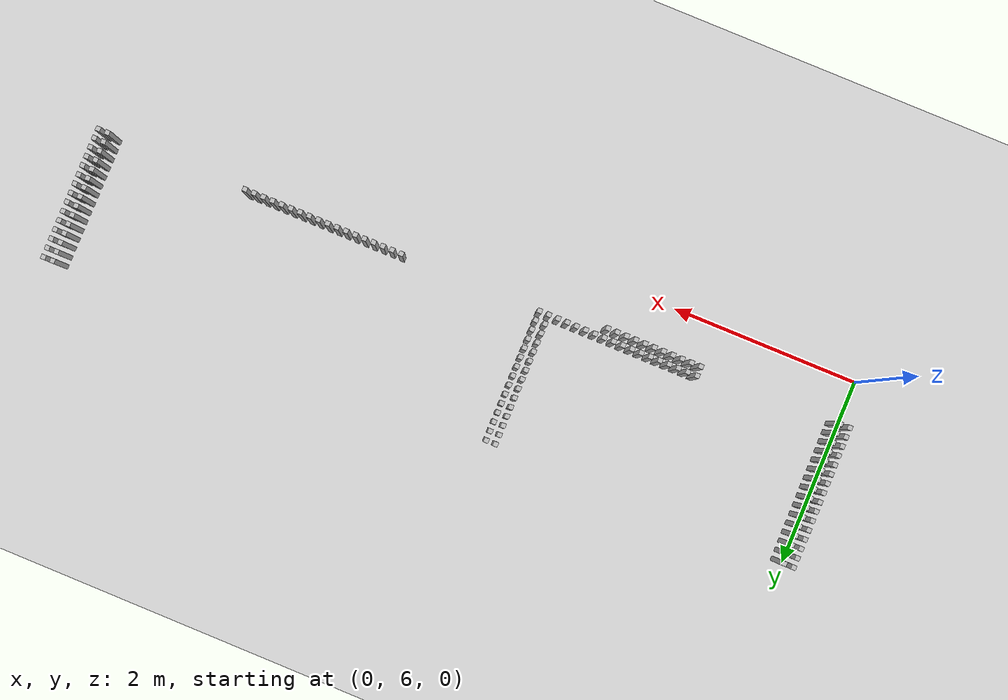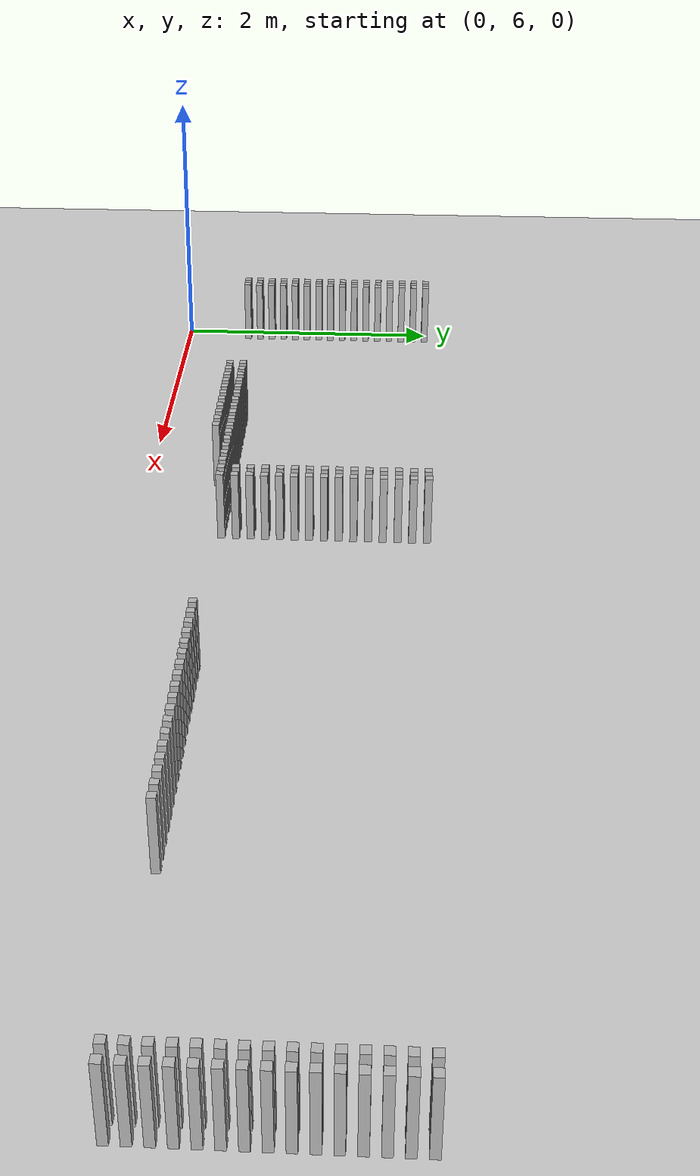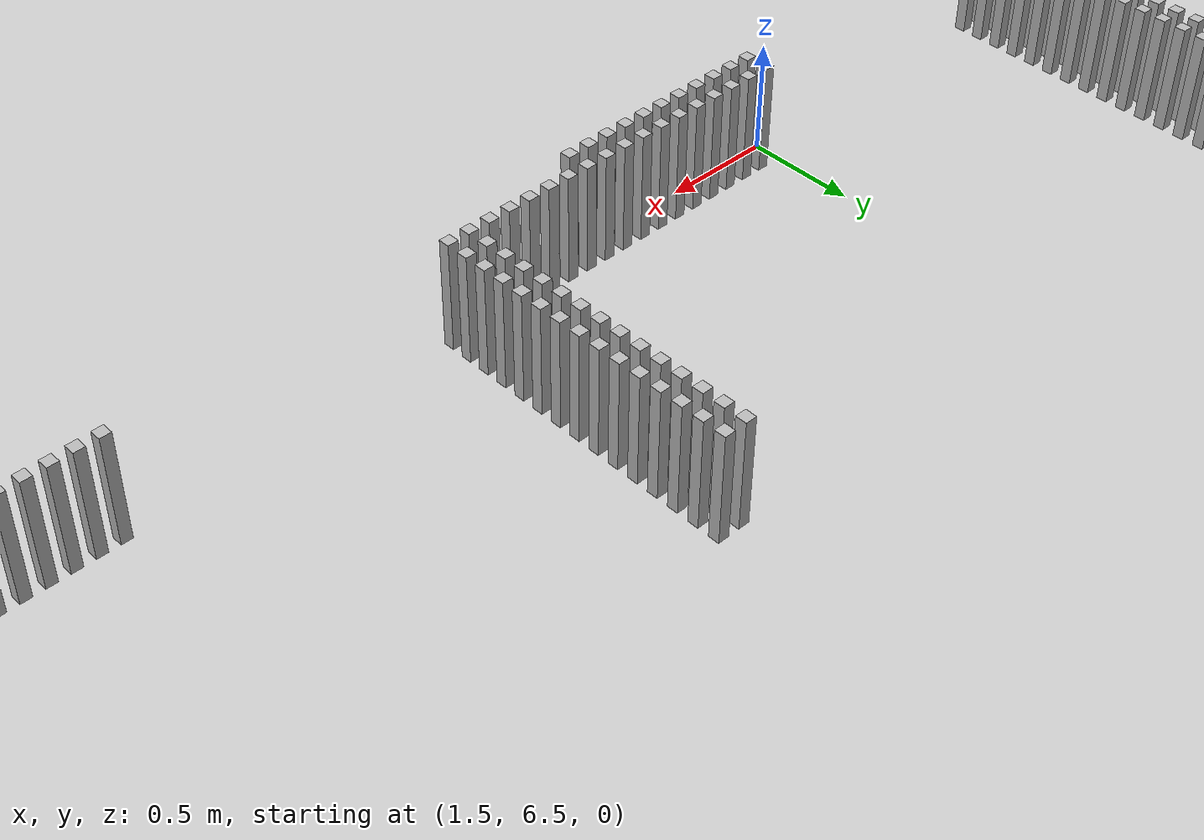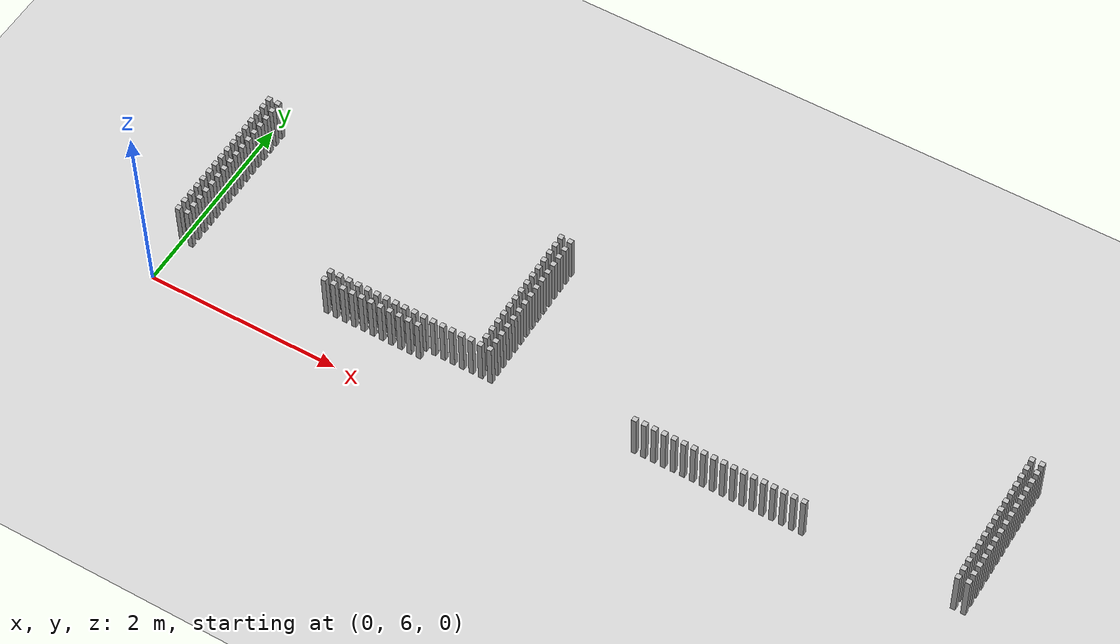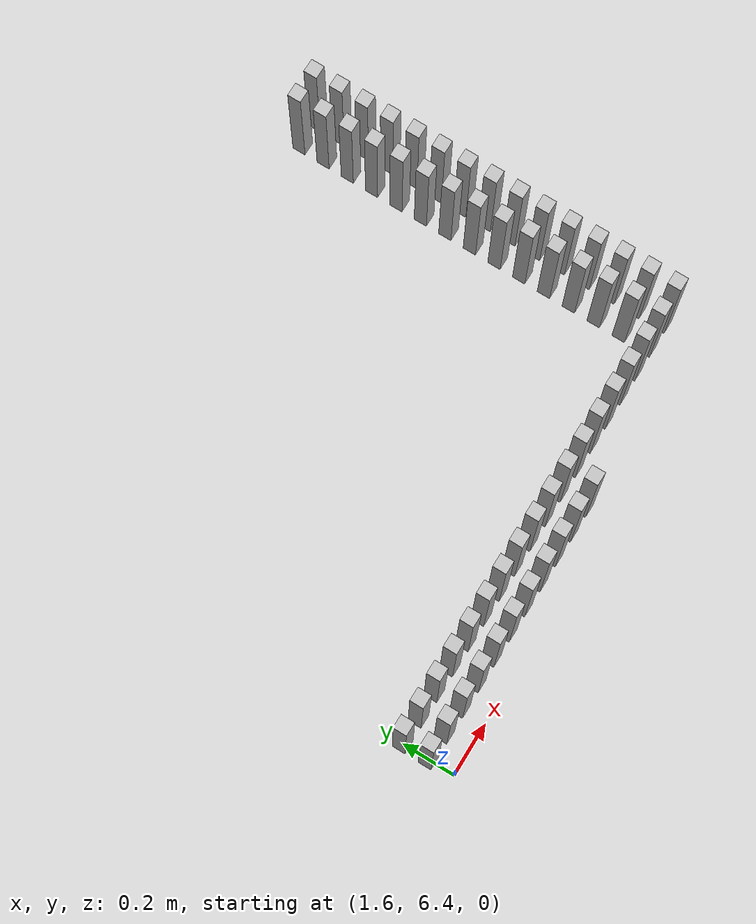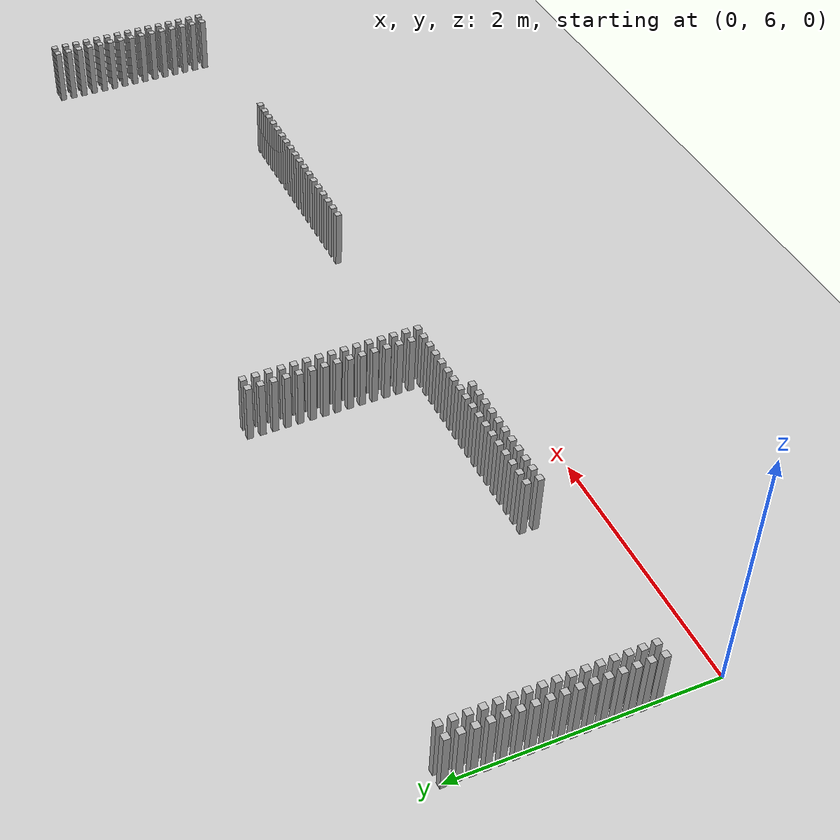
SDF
<sdf version="1.6">
 <world name="default_world">
  <include><uri>model://sun</uri></include>
  <include><uri>model://ground_plane</uri></include>
  <model name="wall_136">
   <static>true</static>
   <link name="link">
    <collision name="collision"><geometry><box><size>0.05 0.05 0.5</size></box></geometry></collision>
    <visual name="visual"><geometry><box><size>0.05 0.05 0.5</size></box></geometry></visual>
    <pose>0.0 8.0 0.25 0 0 0</pose>
   </link>
  </model>
  <model name="wall_137">
   <static>true</static>
   <link name="link">
    <collision name="collision"><geometry><box><size>0.05 0.05 0.5</size></box></geometry></collision>
    <visual name="visual"><geometry><box><size>0.05 0.05 0.5</size></box></geometry></visual>
    <pose>0.1 8.0 0.25 0 0 0</pose>
   </link>
  </model>
  <model name="wall_138">
   <static>true</static>
   <link name="link">
    <collision name="collision"><geometry><box><size>0.05 0.05 0.5</size></box></geometry></collision>
    <visual name="visual"><geometry><box><size>0.05 0.05 0.5</size></box></geometry></visual>
    <pose>3.2 8.0 0.25 0 0 0</pose>
   </link>
  </model>
  <model name="wall_139">
   <static>true</static>
   <link name="link">
    <collision name="collision"><geometry><box><size>0.05 0.05 0.5</size></box></geometry></collision>
    <visual name="visual"><geometry><box><size>0.05 0.05 0.5</size></box></geometry></visual>
    <pose>3.3000000000000003 8.0 0.25 0 0 0</pose>
   </link>
  </model>
  <model name="wall_140">
   <static>true</static>
   <link name="link">
    <collision name="collision"><geometry><box><size>0.05 0.05 0.5</size></box></geometry></collision>
    <visual name="visual"><geometry><box><size>0.05 0.05 0.5</size></box></geometry></visual>
    <pose>8.0 8.0 0.25 0 0 0</pose>
   </link>
  </model>
  <model name="wall_141">
   <static>true</static>
   <link name="link">
    <collision name="collision"><geometry><box><size>0.05 0.05 0.5</size></box></geometry></collision>
    <visual name="visual"><geometry><box><size>0.05 0.05 0.5</size></box></geometry></visual>
    <pose>8.1 8.0 0.25 0 0 0</pose>
   </link>
  </model>
  <model name="wall_142">
   <static>true</static>
   <link name="link">
    <collision name="collision"><geometry><box><size>0.05 0.05 0.5</size></box></geometry></collision>
    <visual name="visual"><geometry><box><size>0.05 0.05 0.5</size></box></geometry></visual>
    <pose>0.0 7.9 0.25 0 0 0</pose>
   </link>
  </model>
  <model name="wall_143">
   <static>true</static>
   <link name="link">
    <collision name="collision"><geometry><box><size>0.05 0.05 0.5</size></box></geometry></collision>
    <visual name="visual"><geometry><box><size>0.05 0.05 0.5</size></box></geometry></visual>
    <pose>0.1 7.9 0.25 0 0 0</pose>
   </link>
  </model>
  <model name="wall_144">
   <static>true</static>
   <link name="link">
    <collision name="collision"><geometry><box><size>0.05 0.05 0.5</size></box></geometry></collision>
    <visual name="visual"><geometry><box><size>0.05 0.05 0.5</size></box></geometry></visual>
    <pose>3.2 7.9 0.25 0 0 0</pose>
   </link>
  </model>
  <model name="wall_145">
   <static>true</static>
   <link name="link">
    <collision name="collision"><geometry><box><size>0.05 0.05 0.5</size></box></geometry></collision>
    <visual name="visual"><geometry><box><size>0.05 0.05 0.5</size></box></geometry></visual>
    <pose>3.3000000000000003 7.9 0.25 0 0 0</pose>
   </link>
  </model>
  <model name="wall_146">
   <static>true</static>
   <link name="link">
    <collision name="collision"><geometry><box><size>0.05 0.05 0.5</size></box></geometry></collision>
    <visual name="visual"><geometry><box><size>0.05 0.05 0.5</size></box></geometry></visual>
    <pose>8.0 7.9 0.25 0 0 0</pose>
   </link>
  </model>
  <model name="wall_147">
   <static>true</static>
   <link name="link">
    <collision name="collision"><geometry><box><size>0.05 0.05 0.5</size></box></geometry></collision>
    <visual name="visual"><geometry><box><size>0.05 0.05 0.5</size></box></geometry></visual>
    <pose>8.1 7.9 0.25 0 0 0</pose>
   </link>
  </model>
  <model name="wall_148">
   <static>true</static>
   <link name="link">
    <collision name="collision"><geometry><box><size>0.05 0.05 0.5</size></box></geometry></collision>
    <visual name="visual"><geometry><box><size>0.05 0.05 0.5</size></box></geometry></visual>
    <pose>0.0 7.800000000000001 0.25 0 0 0</pose>
   </link>
  </model>
  <model name="wall_149">
   <static>true</static>
   <link name="link">
    <collision name="collision"><geometry><box><size>0.05 0.05 0.5</size></box></geometry></collision>
    <visual name="visual"><geometry><box><size>0.05 0.05 0.5</size></box></geometry></visual>
    <pose>0.1 7.800000000000001 0.25 0 0 0</pose>
   </link>
  </model>
  <model name="wall_150">
   <static>true</static>
   <link name="link">
    <collision name="collision"><geometry><box><size>0.05 0.05 0.5</size></box></geometry></collision>
    <visual name="visual"><geometry><box><size>0.05 0.05 0.5</size></box></geometry></visual>
    <pose>3.2 7.800000000000001 0.25 0 0 0</pose>
   </link>
  </model>
  <model name="wall_151">
   <static>true</static>
   <link name="link">
    <collision name="collision"><geometry><box><size>0.05 0.05 0.5</size></box></geometry></collision>
    <visual name="visual"><geometry><box><size>0.05 0.05 0.5</size></box></geometry></visual>
    <pose>3.3000000000000003 7.800000000000001 0.25 0 0 0</pose>
   </link>
  </model>
  <model name="wall_152">
   <static>true</static>
   <link name="link">
    <collision name="collision"><geometry><box><size>0.05 0.05 0.5</size></box></geometry></collision>
    <visual name="visual"><geometry><box><size>0.05 0.05 0.5</size></box></geometry></visual>
    <pose>8.0 7.800000000000001 0.25 0 0 0</pose>
   </link>
  </model>
  <model name="wall_153">
   <static>true</static>
   <link name="link">
    <collision name="collision"><geometry><box><size>0.05 0.05 0.5</size></box></geometry></collision>
    <visual name="visual"><geometry><box><size>0.05 0.05 0.5</size></box></geometry></visual>
    <pose>8.1 7.800000000000001 0.25 0 0 0</pose>
   </link>
  </model>
  <model name="wall_154">
   <static>true</static>
   <link name="link">
    <collision name="collision"><geometry><box><size>0.05 0.05 0.5</size></box></geometry></collision>
    <visual name="visual"><geometry><box><size>0.05 0.05 0.5</size></box></geometry></visual>
    <pose>0.0 7.7 0.25 0 0 0</pose>
   </link>
  </model>
  <model name="wall_155">
   <static>true</static>
   <link name="link">
    <collision name="collision"><geometry><box><size>0.05 0.05 0.5</size></box></geometry></collision>
    <visual name="visual"><geometry><box><size>0.05 0.05 0.5</size></box></geometry></visual>
    <pose>0.1 7.7 0.25 0 0 0</pose>
   </link>
  </model>
  <model name="wall_156">
   <static>true</static>
   <link name="link">
    <collision name="collision"><geometry><box><size>0.05 0.05 0.5</size></box></geometry></collision>
    <visual name="visual"><geometry><box><size>0.05 0.05 0.5</size></box></geometry></visual>
    <pose>3.2 7.7 0.25 0 0 0</pose>
   </link>
  </model>
  <model name="wall_157">
   <static>true</static>
   <link name="link">
    <collision name="collision"><geometry><box><size>0.05 0.05 0.5</size></box></geometry></collision>
    <visual name="visual"><geometry><box><size>0.05 0.05 0.5</size></box></geometry></visual>
    <pose>3.3000000000000003 7.7 0.25 0 0 0</pose>
   </link>
  </model>
  <model name="wall_158">
   <static>true</static>
   <link name="link">
    <collision name="collision"><geometry><box><size>0.05 0.05 0.5</size></box></geometry></collision>
    <visual name="visual"><geometry><box><size>0.05 0.05 0.5</size></box></geometry></visual>
    <pose>8.0 7.7 0.25 0 0 0</pose>
   </link>
  </model>
  <model name="wall_159">
   <static>true</static>
   <link name="link">
    <collision name="collision"><geometry><box><size>0.05 0.05 0.5</size></box></geometry></collision>
    <visual name="visual"><geometry><box><size>0.05 0.05 0.5</size></box></geometry></visual>
    <pose>8.1 7.7 0.25 0 0 0</pose>
   </link>
  </model>
  <model name="wall_160">
   <static>true</static>
   <link name="link">
    <collision name="collision"><geometry><box><size>0.05 0.05 0.5</size></box></geometry></collision>
    <visual name="visual"><geometry><box><size>0.05 0.05 0.5</size></box></geometry></visual>
    <pose>0.0 7.6000000000000005 0.25 0 0 0</pose>
   </link>
  </model>
  <model name="wall_161">
   <static>true</static>
   <link name="link">
    <collision name="collision"><geometry><box><size>0.05 0.05 0.5</size></box></geometry></collision>
    <visual name="visual"><geometry><box><size>0.05 0.05 0.5</size></box></geometry></visual>
    <pose>0.1 7.6000000000000005 0.25 0 0 0</pose>
   </link>
  </model>
  <model name="wall_162">
   <static>true</static>
   <link name="link">
    <collision name="collision"><geometry><box><size>0.05 0.05 0.5</size></box></geometry></collision>
    <visual name="visual"><geometry><box><size>0.05 0.05 0.5</size></box></geometry></visual>
    <pose>3.2 7.6000000000000005 0.25 0 0 0</pose>
   </link>
  </model>
  <model name="wall_163">
   <static>true</static>
   <link name="link">
    <collision name="collision"><geometry><box><size>0.05 0.05 0.5</size></box></geometry></collision>
    <visual name="visual"><geometry><box><size>0.05 0.05 0.5</size></box></geometry></visual>
    <pose>3.3000000000000003 7.6000000000000005 0.25 0 0 0</pose>
   </link>
  </model>
  <model name="wall_164">
   <static>true</static>
   <link name="link">
    <collision name="collision"><geometry><box><size>0.05 0.05 0.5</size></box></geometry></collision>
    <visual name="visual"><geometry><box><size>0.05 0.05 0.5</size></box></geometry></visual>
    <pose>8.0 7.6000000000000005 0.25 0 0 0</pose>
   </link>
  </model>
  <model name="wall_165">
   <static>true</static>
   <link name="link">
    <collision name="collision"><geometry><box><size>0.05 0.05 0.5</size></box></geometry></collision>
    <visual name="visual"><geometry><box><size>0.05 0.05 0.5</size></box></geometry></visual>
    <pose>8.1 7.6000000000000005 0.25 0 0 0</pose>
   </link>
  </model>
  <model name="wall_166">
   <static>true</static>
   <link name="link">
    <collision name="collision"><geometry><box><size>0.05 0.05 0.5</size></box></geometry></collision>
    <visual name="visual"><geometry><box><size>0.05 0.05 0.5</size></box></geometry></visual>
    <pose>0.0 7.5 0.25 0 0 0</pose>
   </link>
  </model>
  <model name="wall_167">
   <static>true</static>
   <link name="link">
    <collision name="collision"><geometry><box><size>0.05 0.05 0.5</size></box></geometry></collision>
    <visual name="visual"><geometry><box><size>0.05 0.05 0.5</size></box></geometry></visual>
    <pose>0.1 7.5 0.25 0 0 0</pose>
   </link>
  </model>
  <model name="wall_168">
   <static>true</static>
   <link name="link">
    <collision name="collision"><geometry><box><size>0.05 0.05 0.5</size></box></geometry></collision>
    <visual name="visual"><geometry><box><size>0.05 0.05 0.5</size></box></geometry></visual>
    <pose>3.2 7.5 0.25 0 0 0</pose>
   </link>
  </model>
  <model name="wall_169">
   <static>true</static>
   <link name="link">
    <collision name="collision"><geometry><box><size>0.05 0.05 0.5</size></box></geometry></collision>
    <visual name="visual"><geometry><box><size>0.05 0.05 0.5</size></box></geometry></visual>
    <pose>3.3000000000000003 7.5 0.25 0 0 0</pose>
   </link>
  </model>
  <model name="wall_170">
   <static>true</static>
   <link name="link">
    <collision name="collision"><geometry><box><size>0.05 0.05 0.5</size></box></geometry></collision>
    <visual name="visual"><geometry><box><size>0.05 0.05 0.5</size></box></geometry></visual>
    <pose>8.0 7.5 0.25 0 0 0</pose>
   </link>
  </model>
  <model name="wall_171">
   <static>true</static>
   <link name="link">
    <collision name="collision"><geometry><box><size>0.05 0.05 0.5</size></box></geometry></collision>
    <visual name="visual"><geometry><box><size>0.05 0.05 0.5</size></box></geometry></visual>
    <pose>8.1 7.5 0.25 0 0 0</pose>
   </link>
  </model>
  <model name="wall_172">
   <static>true</static>
   <link name="link">
    <collision name="collision"><geometry><box><size>0.05 0.05 0.5</size></box></geometry></collision>
    <visual name="visual"><geometry><box><size>0.05 0.05 0.5</size></box></geometry></visual>
    <pose>0.0 7.4 0.25 0 0 0</pose>
   </link>
  </model>
  <model name="wall_173">
   <static>true</static>
   <link name="link">
    <collision name="collision"><geometry><box><size>0.05 0.05 0.5</size></box></geometry></collision>
    <visual name="visual"><geometry><box><size>0.05 0.05 0.5</size></box></geometry></visual>
    <pose>0.1 7.4 0.25 0 0 0</pose>
   </link>
  </model>
  <model name="wall_174">
   <static>true</static>
   <link name="link">
    <collision name="collision"><geometry><box><size>0.05 0.05 0.5</size></box></geometry></collision>
    <visual name="visual"><geometry><box><size>0.05 0.05 0.5</size></box></geometry></visual>
    <pose>3.2 7.4 0.25 0 0 0</pose>
   </link>
  </model>
  <model name="wall_175">
   <static>true</static>
   <link name="link">
    <collision name="collision"><geometry><box><size>0.05 0.05 0.5</size></box></geometry></collision>
    <visual name="visual"><geometry><box><size>0.05 0.05 0.5</size></box></geometry></visual>
    <pose>3.3000000000000003 7.4 0.25 0 0 0</pose>
   </link>
  </model>
  <model name="wall_176">
   <static>true</static>
   <link name="link">
    <collision name="collision"><geometry><box><size>0.05 0.05 0.5</size></box></geometry></collision>
    <visual name="visual"><geometry><box><size>0.05 0.05 0.5</size></box></geometry></visual>
    <pose>8.0 7.4 0.25 0 0 0</pose>
   </link>
  </model>
  <model name="wall_177">
   <static>true</static>
   <link name="link">
    <collision name="collision"><geometry><box><size>0.05 0.05 0.5</size></box></geometry></collision>
    <visual name="visual"><geometry><box><size>0.05 0.05 0.5</size></box></geometry></visual>
    <pose>8.1 7.4 0.25 0 0 0</pose>
   </link>
  </model>
  <model name="wall_178">
   <static>true</static>
   <link name="link">
    <collision name="collision"><geometry><box><size>0.05 0.05 0.5</size></box></geometry></collision>
    <visual name="visual"><geometry><box><size>0.05 0.05 0.5</size></box></geometry></visual>
    <pose>0.0 7.300000000000001 0.25 0 0 0</pose>
   </link>
  </model>
  <model name="wall_179">
   <static>true</static>
   <link name="link">
    <collision name="collision"><geometry><box><size>0.05 0.05 0.5</size></box></geometry></collision>
    <visual name="visual"><geometry><box><size>0.05 0.05 0.5</size></box></geometry></visual>
    <pose>0.1 7.300000000000001 0.25 0 0 0</pose>
   </link>
  </model>
  <model name="wall_180">
   <static>true</static>
   <link name="link">
    <collision name="collision"><geometry><box><size>0.05 0.05 0.5</size></box></geometry></collision>
    <visual name="visual"><geometry><box><size>0.05 0.05 0.5</size></box></geometry></visual>
    <pose>3.2 7.300000000000001 0.25 0 0 0</pose>
   </link>
  </model>
  <model name="wall_181">
   <static>true</static>
   <link name="link">
    <collision name="collision"><geometry><box><size>0.05 0.05 0.5</size></box></geometry></collision>
    <visual name="visual"><geometry><box><size>0.05 0.05 0.5</size></box></geometry></visual>
    <pose>3.3000000000000003 7.300000000000001 0.25 0 0 0</pose>
   </link>
  </model>
  <model name="wall_182">
   <static>true</static>
   <link name="link">
    <collision name="collision"><geometry><box><size>0.05 0.05 0.5</size></box></geometry></collision>
    <visual name="visual"><geometry><box><size>0.05 0.05 0.5</size></box></geometry></visual>
    <pose>8.0 7.300000000000001 0.25 0 0 0</pose>
   </link>
  </model>
  <model name="wall_183">
   <static>true</static>
   <link name="link">
    <collision name="collision"><geometry><box><size>0.05 0.05 0.5</size></box></geometry></collision>
    <visual name="visual"><geometry><box><size>0.05 0.05 0.5</size></box></geometry></visual>
    <pose>8.1 7.300000000000001 0.25 0 0 0</pose>
   </link>
  </model>
  <model name="wall_184">
   <static>true</static>
   <link name="link">
    <collision name="collision"><geometry><box><size>0.05 0.05 0.5</size></box></geometry></collision>
    <visual name="visual"><geometry><box><size>0.05 0.05 0.5</size></box></geometry></visual>
    <pose>0.0 7.2 0.25 0 0 0</pose>
   </link>
  </model>
  <model name="wall_185">
   <static>true</static>
   <link name="link">
    <collision name="collision"><geometry><box><size>0.05 0.05 0.5</size></box></geometry></collision>
    <visual name="visual"><geometry><box><size>0.05 0.05 0.5</size></box></geometry></visual>
    <pose>0.1 7.2 0.25 0 0 0</pose>
   </link>
  </model>
  <model name="wall_186">
   <static>true</static>
   <link name="link">
    <collision name="collision"><geometry><box><size>0.05 0.05 0.5</size></box></geometry></collision>
    <visual name="visual"><geometry><box><size>0.05 0.05 0.5</size></box></geometry></visual>
    <pose>3.2 7.2 0.25 0 0 0</pose>
   </link>
  </model>
  <model name="wall_187">
   <static>true</static>
   <link name="link">
    <collision name="collision"><geometry><box><size>0.05 0.05 0.5</size></box></geometry></collision>
    <visual name="visual"><geometry><box><size>0.05 0.05 0.5</size></box></geometry></visual>
    <pose>3.3000000000000003 7.2 0.25 0 0 0</pose>
   </link>
  </model>
  <model name="wall_188">
   <static>true</static>
   <link name="link">
    <collision name="collision"><geometry><box><size>0.05 0.05 0.5</size></box></geometry></collision>
    <visual name="visual"><geometry><box><size>0.05 0.05 0.5</size></box></geometry></visual>
    <pose>8.0 7.2 0.25 0 0 0</pose>
   </link>
  </model>
  <model name="wall_189">
   <static>true</static>
   <link name="link">
    <collision name="collision"><geometry><box><size>0.05 0.05 0.5</size></box></geometry></collision>
    <visual name="visual"><geometry><box><size>0.05 0.05 0.5</size></box></geometry></visual>
    <pose>8.1 7.2 0.25 0 0 0</pose>
   </link>
  </model>
  <model name="wall_190">
   <static>true</static>
   <link name="link">
    <collision name="collision"><geometry><box><size>0.05 0.05 0.5</size></box></geometry></collision>
    <visual name="visual"><geometry><box><size>0.05 0.05 0.5</size></box></geometry></visual>
    <pose>0.0 7.1000000000000005 0.25 0 0 0</pose>
   </link>
  </model>
  <model name="wall_191">
   <static>true</static>
   <link name="link">
    <collision name="collision"><geometry><box><size>0.05 0.05 0.5</size></box></geometry></collision>
    <visual name="visual"><geometry><box><size>0.05 0.05 0.5</size></box></geometry></visual>
    <pose>0.1 7.1000000000000005 0.25 0 0 0</pose>
   </link>
  </model>
  <model name="wall_192">
   <static>true</static>
   <link name="link">
    <collision name="collision"><geometry><box><size>0.05 0.05 0.5</size></box></geometry></collision>
    <visual name="visual"><geometry><box><size>0.05 0.05 0.5</size></box></geometry></visual>
    <pose>3.2 7.1000000000000005 0.25 0 0 0</pose>
   </link>
  </model>
  <model name="wall_193">
   <static>true</static>
   <link name="link">
    <collision name="collision"><geometry><box><size>0.05 0.05 0.5</size></box></geometry></collision>
    <visual name="visual"><geometry><box><size>0.05 0.05 0.5</size></box></geometry></visual>
    <pose>3.3000000000000003 7.1000000000000005 0.25 0 0 0</pose>
   </link>
  </model>
  <model name="wall_194">
   <static>true</static>
   <link name="link">
    <collision name="collision"><geometry><box><size>0.05 0.05 0.5</size></box></geometry></collision>
    <visual name="visual"><geometry><box><size>0.05 0.05 0.5</size></box></geometry></visual>
    <pose>8.0 7.1000000000000005 0.25 0 0 0</pose>
   </link>
  </model>
  <model name="wall_195">
   <static>true</static>
   <link name="link">
    <collision name="collision"><geometry><box><size>0.05 0.05 0.5</size></box></geometry></collision>
    <visual name="visual"><geometry><box><size>0.05 0.05 0.5</size></box></geometry></visual>
    <pose>8.1 7.1000000000000005 0.25 0 0 0</pose>
   </link>
  </model>
  <model name="wall_196">
   <static>true</static>
   <link name="link">
    <collision name="collision"><geometry><box><size>0.05 0.05 0.5</size></box></geometry></collision>
    <visual name="visual"><geometry><box><size>0.05 0.05 0.5</size></box></geometry></visual>
    <pose>0.0 7.0 0.25 0 0 0</pose>
   </link>
  </model>
  <model name="wall_197">
   <static>true</static>
   <link name="link">
    <collision name="collision"><geometry><box><size>0.05 0.05 0.5</size></box></geometry></collision>
    <visual name="visual"><geometry><box><size>0.05 0.05 0.5</size></box></geometry></visual>
    <pose>0.1 7.0 0.25 0 0 0</pose>
   </link>
  </model>
  <model name="wall_198">
   <static>true</static>
   <link name="link">
    <collision name="collision"><geometry><box><size>0.05 0.05 0.5</size></box></geometry></collision>
    <visual name="visual"><geometry><box><size>0.05 0.05 0.5</size></box></geometry></visual>
    <pose>3.2 7.0 0.25 0 0 0</pose>
   </link>
  </model>
  <model name="wall_199">
   <static>true</static>
   <link name="link">
    <collision name="collision"><geometry><box><size>0.05 0.05 0.5</size></box></geometry></collision>
    <visual name="visual"><geometry><box><size>0.05 0.05 0.5</size></box></geometry></visual>
    <pose>3.3000000000000003 7.0 0.25 0 0 0</pose>
   </link>
  </model>
  <model name="wall_200">
   <static>true</static>
   <link name="link">
    <collision name="collision"><geometry><box><size>0.05 0.05 0.5</size></box></geometry></collision>
    <visual name="visual"><geometry><box><size>0.05 0.05 0.5</size></box></geometry></visual>
    <pose>8.0 7.0 0.25 0 0 0</pose>
   </link>
  </model>
  <model name="wall_201">
   <static>true</static>
   <link name="link">
    <collision name="collision"><geometry><box><size>0.05 0.05 0.5</size></box></geometry></collision>
    <visual name="visual"><geometry><box><size>0.05 0.05 0.5</size></box></geometry></visual>
    <pose>8.1 7.0 0.25 0 0 0</pose>
   </link>
  </model>
  <model name="wall_202">
   <static>true</static>
   <link name="link">
    <collision name="collision"><geometry><box><size>0.05 0.05 0.5</size></box></geometry></collision>
    <visual name="visual"><geometry><box><size>0.05 0.05 0.5</size></box></geometry></visual>
    <pose>0.0 6.9 0.25 0 0 0</pose>
   </link>
  </model>
  <model name="wall_203">
   <static>true</static>
   <link name="link">
    <collision name="collision"><geometry><box><size>0.05 0.05 0.5</size></box></geometry></collision>
    <visual name="visual"><geometry><box><size>0.05 0.05 0.5</size></box></geometry></visual>
    <pose>0.1 6.9 0.25 0 0 0</pose>
   </link>
  </model>
  <model name="wall_204">
   <static>true</static>
   <link name="link">
    <collision name="collision"><geometry><box><size>0.05 0.05 0.5</size></box></geometry></collision>
    <visual name="visual"><geometry><box><size>0.05 0.05 0.5</size></box></geometry></visual>
    <pose>3.2 6.9 0.25 0 0 0</pose>
   </link>
  </model>
  <model name="wall_205">
   <static>true</static>
   <link name="link">
    <collision name="collision"><geometry><box><size>0.05 0.05 0.5</size></box></geometry></collision>
    <visual name="visual"><geometry><box><size>0.05 0.05 0.5</size></box></geometry></visual>
    <pose>3.3000000000000003 6.9 0.25 0 0 0</pose>
   </link>
  </model>
  <model name="wall_206">
   <static>true</static>
   <link name="link">
    <collision name="collision"><geometry><box><size>0.05 0.05 0.5</size></box></geometry></collision>
    <visual name="visual"><geometry><box><size>0.05 0.05 0.5</size></box></geometry></visual>
    <pose>8.0 6.9 0.25 0 0 0</pose>
   </link>
  </model>
  <model name="wall_207">
   <static>true</static>
   <link name="link">
    <collision name="collision"><geometry><box><size>0.05 0.05 0.5</size></box></geometry></collision>
    <visual name="visual"><geometry><box><size>0.05 0.05 0.5</size></box></geometry></visual>
    <pose>8.1 6.9 0.25 0 0 0</pose>
   </link>
  </model>
  <model name="wall_208">
   <static>true</static>
   <link name="link">
    <collision name="collision"><geometry><box><size>0.05 0.05 0.5</size></box></geometry></collision>
    <visual name="visual"><geometry><box><size>0.05 0.05 0.5</size></box></geometry></visual>
    <pose>0.0 6.800000000000001 0.25 0 0 0</pose>
   </link>
  </model>
  <model name="wall_209">
   <static>true</static>
   <link name="link">
    <collision name="collision"><geometry><box><size>0.05 0.05 0.5</size></box></geometry></collision>
    <visual name="visual"><geometry><box><size>0.05 0.05 0.5</size></box></geometry></visual>
    <pose>0.1 6.800000000000001 0.25 0 0 0</pose>
   </link>
  </model>
  <model name="wall_210">
   <static>true</static>
   <link name="link">
    <collision name="collision"><geometry><box><size>0.05 0.05 0.5</size></box></geometry></collision>
    <visual name="visual"><geometry><box><size>0.05 0.05 0.5</size></box></geometry></visual>
    <pose>3.2 6.800000000000001 0.25 0 0 0</pose>
   </link>
  </model>
  <model name="wall_211">
   <static>true</static>
   <link name="link">
    <collision name="collision"><geometry><box><size>0.05 0.05 0.5</size></box></geometry></collision>
    <visual name="visual"><geometry><box><size>0.05 0.05 0.5</size></box></geometry></visual>
    <pose>3.3000000000000003 6.800000000000001 0.25 0 0 0</pose>
   </link>
  </model>
  <model name="wall_212">
   <static>true</static>
   <link name="link">
    <collision name="collision"><geometry><box><size>0.05 0.05 0.5</size></box></geometry></collision>
    <visual name="visual"><geometry><box><size>0.05 0.05 0.5</size></box></geometry></visual>
    <pose>8.0 6.800000000000001 0.25 0 0 0</pose>
   </link>
  </model>
  <model name="wall_213">
   <static>true</static>
   <link name="link">
    <collision name="collision"><geometry><box><size>0.05 0.05 0.5</size></box></geometry></collision>
    <visual name="visual"><geometry><box><size>0.05 0.05 0.5</size></box></geometry></visual>
    <pose>8.1 6.800000000000001 0.25 0 0 0</pose>
   </link>
  </model>
  <model name="wall_214">
   <static>true</static>
   <link name="link">
    <collision name="collision"><geometry><box><size>0.05 0.05 0.5</size></box></geometry></collision>
    <visual name="visual"><geometry><box><size>0.05 0.05 0.5</size></box></geometry></visual>
    <pose>0.0 6.7 0.25 0 0 0</pose>
   </link>
  </model>
  <model name="wall_215">
   <static>true</static>
   <link name="link">
    <collision name="collision"><geometry><box><size>0.05 0.05 0.5</size></box></geometry></collision>
    <visual name="visual"><geometry><box><size>0.05 0.05 0.5</size></box></geometry></visual>
    <pose>0.1 6.7 0.25 0 0 0</pose>
   </link>
  </model>
  <model name="wall_216">
   <static>true</static>
   <link name="link">
    <collision name="collision"><geometry><box><size>0.05 0.05 0.5</size></box></geometry></collision>
    <visual name="visual"><geometry><box><size>0.05 0.05 0.5</size></box></geometry></visual>
    <pose>3.2 6.7 0.25 0 0 0</pose>
   </link>
  </model>
  <model name="wall_217">
   <static>true</static>
   <link name="link">
    <collision name="collision"><geometry><box><size>0.05 0.05 0.5</size></box></geometry></collision>
    <visual name="visual"><geometry><box><size>0.05 0.05 0.5</size></box></geometry></visual>
    <pose>3.3000000000000003 6.7 0.25 0 0 0</pose>
   </link>
  </model>
  <model name="wall_218">
   <static>true</static>
   <link name="link">
    <collision name="collision"><geometry><box><size>0.05 0.05 0.5</size></box></geometry></collision>
    <visual name="visual"><geometry><box><size>0.05 0.05 0.5</size></box></geometry></visual>
    <pose>8.0 6.7 0.25 0 0 0</pose>
   </link>
  </model>
  <model name="wall_219">
   <static>true</static>
   <link name="link">
    <collision name="collision"><geometry><box><size>0.05 0.05 0.5</size></box></geometry></collision>
    <visual name="visual"><geometry><box><size>0.05 0.05 0.5</size></box></geometry></visual>
    <pose>8.1 6.7 0.25 0 0 0</pose>
   </link>
  </model>
  <model name="wall_220">
   <static>true</static>
   <link name="link">
    <collision name="collision"><geometry><box><size>0.05 0.05 0.5</size></box></geometry></collision>
    <visual name="visual"><geometry><box><size>0.05 0.05 0.5</size></box></geometry></visual>
    <pose>0.0 6.6000000000000005 0.25 0 0 0</pose>
   </link>
  </model>
  <model name="wall_221">
   <static>true</static>
   <link name="link">
    <collision name="collision"><geometry><box><size>0.05 0.05 0.5</size></box></geometry></collision>
    <visual name="visual"><geometry><box><size>0.05 0.05 0.5</size></box></geometry></visual>
    <pose>0.1 6.6000000000000005 0.25 0 0 0</pose>
   </link>
  </model>
  <model name="wall_222">
   <static>true</static>
   <link name="link">
    <collision name="collision"><geometry><box><size>0.05 0.05 0.5</size></box></geometry></collision>
    <visual name="visual"><geometry><box><size>0.05 0.05 0.5</size></box></geometry></visual>
    <pose>1.6 6.6000000000000005 0.25 0 0 0</pose>
   </link>
  </model>
  <model name="wall_223">
   <static>true</static>
   <link name="link">
    <collision name="collision"><geometry><box><size>0.05 0.05 0.5</size></box></geometry></collision>
    <visual name="visual"><geometry><box><size>0.05 0.05 0.5</size></box></geometry></visual>
    <pose>1.7000000000000002 6.6000000000000005 0.25 0 0 0</pose>
   </link>
  </model>
  <model name="wall_224">
   <static>true</static>
   <link name="link">
    <collision name="collision"><geometry><box><size>0.05 0.05 0.5</size></box></geometry></collision>
    <visual name="visual"><geometry><box><size>0.05 0.05 0.5</size></box></geometry></visual>
    <pose>1.8 6.6000000000000005 0.25 0 0 0</pose>
   </link>
  </model>
  <model name="wall_225">
   <static>true</static>
   <link name="link">
    <collision name="collision"><geometry><box><size>0.05 0.05 0.5</size></box></geometry></collision>
    <visual name="visual"><geometry><box><size>0.05 0.05 0.5</size></box></geometry></visual>
    <pose>1.9000000000000001 6.6000000000000005 0.25 0 0 0</pose>
   </link>
  </model>
  <model name="wall_226">
   <static>true</static>
   <link name="link">
    <collision name="collision"><geometry><box><size>0.05 0.05 0.5</size></box></geometry></collision>
    <visual name="visual"><geometry><box><size>0.05 0.05 0.5</size></box></geometry></visual>
    <pose>2.0 6.6000000000000005 0.25 0 0 0</pose>
   </link>
  </model>
  <model name="wall_227">
   <static>true</static>
   <link name="link">
    <collision name="collision"><geometry><box><size>0.05 0.05 0.5</size></box></geometry></collision>
    <visual name="visual"><geometry><box><size>0.05 0.05 0.5</size></box></geometry></visual>
    <pose>2.1 6.6000000000000005 0.25 0 0 0</pose>
   </link>
  </model>
  <model name="wall_228">
   <static>true</static>
   <link name="link">
    <collision name="collision"><geometry><box><size>0.05 0.05 0.5</size></box></geometry></collision>
    <visual name="visual"><geometry><box><size>0.05 0.05 0.5</size></box></geometry></visual>
    <pose>2.2 6.6000000000000005 0.25 0 0 0</pose>
   </link>
  </model>
  <model name="wall_229">
   <static>true</static>
   <link name="link">
    <collision name="collision"><geometry><box><size>0.05 0.05 0.5</size></box></geometry></collision>
    <visual name="visual"><geometry><box><size>0.05 0.05 0.5</size></box></geometry></visual>
    <pose>2.3000000000000003 6.6000000000000005 0.25 0 0 0</pose>
   </link>
  </model>
  <model name="wall_230">
   <static>true</static>
   <link name="link">
    <collision name="collision"><geometry><box><size>0.05 0.05 0.5</size></box></geometry></collision>
    <visual name="visual"><geometry><box><size>0.05 0.05 0.5</size></box></geometry></visual>
    <pose>2.4000000000000004 6.6000000000000005 0.25 0 0 0</pose>
   </link>
  </model>
  <model name="wall_231">
   <static>true</static>
   <link name="link">
    <collision name="collision"><geometry><box><size>0.05 0.05 0.5</size></box></geometry></collision>
    <visual name="visual"><geometry><box><size>0.05 0.05 0.5</size></box></geometry></visual>
    <pose>2.5 6.6000000000000005 0.25 0 0 0</pose>
   </link>
  </model>
  <model name="wall_232">
   <static>true</static>
   <link name="link">
    <collision name="collision"><geometry><box><size>0.05 0.05 0.5</size></box></geometry></collision>
    <visual name="visual"><geometry><box><size>0.05 0.05 0.5</size></box></geometry></visual>
    <pose>2.6 6.6000000000000005 0.25 0 0 0</pose>
   </link>
  </model>
  <model name="wall_233">
   <static>true</static>
   <link name="link">
    <collision name="collision"><geometry><box><size>0.05 0.05 0.5</size></box></geometry></collision>
    <visual name="visual"><geometry><box><size>0.05 0.05 0.5</size></box></geometry></visual>
    <pose>2.7 6.6000000000000005 0.25 0 0 0</pose>
   </link>
  </model>
  <model name="wall_234">
   <static>true</static>
   <link name="link">
    <collision name="collision"><geometry><box><size>0.05 0.05 0.5</size></box></geometry></collision>
    <visual name="visual"><geometry><box><size>0.05 0.05 0.5</size></box></geometry></visual>
    <pose>2.8000000000000003 6.6000000000000005 0.25 0 0 0</pose>
   </link>
  </model>
  <model name="wall_235">
   <static>true</static>
   <link name="link">
    <collision name="collision"><geometry><box><size>0.05 0.05 0.5</size></box></geometry></collision>
    <visual name="visual"><geometry><box><size>0.05 0.05 0.5</size></box></geometry></visual>
    <pose>2.9000000000000004 6.6000000000000005 0.25 0 0 0</pose>
   </link>
  </model>
  <model name="wall_236">
   <static>true</static>
   <link name="link">
    <collision name="collision"><geometry><box><size>0.05 0.05 0.5</size></box></geometry></collision>
    <visual name="visual"><geometry><box><size>0.05 0.05 0.5</size></box></geometry></visual>
    <pose>3.0 6.6000000000000005 0.25 0 0 0</pose>
   </link>
  </model>
  <model name="wall_237">
   <static>true</static>
   <link name="link">
    <collision name="collision"><geometry><box><size>0.05 0.05 0.5</size></box></geometry></collision>
    <visual name="visual"><geometry><box><size>0.05 0.05 0.5</size></box></geometry></visual>
    <pose>3.1 6.6000000000000005 0.25 0 0 0</pose>
   </link>
  </model>
  <model name="wall_238">
   <static>true</static>
   <link name="link">
    <collision name="collision"><geometry><box><size>0.05 0.05 0.5</size></box></geometry></collision>
    <visual name="visual"><geometry><box><size>0.05 0.05 0.5</size></box></geometry></visual>
    <pose>3.2 6.6000000000000005 0.25 0 0 0</pose>
   </link>
  </model>
  <model name="wall_239">
   <static>true</static>
   <link name="link">
    <collision name="collision"><geometry><box><size>0.05 0.05 0.5</size></box></geometry></collision>
    <visual name="visual"><geometry><box><size>0.05 0.05 0.5</size></box></geometry></visual>
    <pose>3.3000000000000003 6.6000000000000005 0.25 0 0 0</pose>
   </link>
  </model>
  <model name="wall_240">
   <static>true</static>
   <link name="link">
    <collision name="collision"><geometry><box><size>0.05 0.05 0.5</size></box></geometry></collision>
    <visual name="visual"><geometry><box><size>0.05 0.05 0.5</size></box></geometry></visual>
    <pose>4.800000000000001 6.6000000000000005 0.25 0 0 0</pose>
   </link>
  </model>
  <model name="wall_241">
   <static>true</static>
   <link name="link">
    <collision name="collision"><geometry><box><size>0.05 0.05 0.5</size></box></geometry></collision>
    <visual name="visual"><geometry><box><size>0.05 0.05 0.5</size></box></geometry></visual>
    <pose>4.9 6.6000000000000005 0.25 0 0 0</pose>
   </link>
  </model>
  <model name="wall_242">
   <static>true</static>
   <link name="link">
    <collision name="collision"><geometry><box><size>0.05 0.05 0.5</size></box></geometry></collision>
    <visual name="visual"><geometry><box><size>0.05 0.05 0.5</size></box></geometry></visual>
    <pose>5.0 6.6000000000000005 0.25 0 0 0</pose>
   </link>
  </model>
  <model name="wall_243">
   <static>true</static>
   <link name="link">
    <collision name="collision"><geometry><box><size>0.05 0.05 0.5</size></box></geometry></collision>
    <visual name="visual"><geometry><box><size>0.05 0.05 0.5</size></box></geometry></visual>
    <pose>5.1000000000000005 6.6000000000000005 0.25 0 0 0</pose>
   </link>
  </model>
  <model name="wall_244">
   <static>true</static>
   <link name="link">
    <collision name="collision"><geometry><box><size>0.05 0.05 0.5</size></box></geometry></collision>
    <visual name="visual"><geometry><box><size>0.05 0.05 0.5</size></box></geometry></visual>
    <pose>5.2 6.6000000000000005 0.25 0 0 0</pose>
   </link>
  </model>
  <model name="wall_245">
   <static>true</static>
   <link name="link">
    <collision name="collision"><geometry><box><size>0.05 0.05 0.5</size></box></geometry></collision>
    <visual name="visual"><geometry><box><size>0.05 0.05 0.5</size></box></geometry></visual>
    <pose>5.300000000000001 6.6000000000000005 0.25 0 0 0</pose>
   </link>
  </model>
  <model name="wall_246">
   <static>true</static>
   <link name="link">
    <collision name="collision"><geometry><box><size>0.05 0.05 0.5</size></box></geometry></collision>
    <visual name="visual"><geometry><box><size>0.05 0.05 0.5</size></box></geometry></visual>
    <pose>5.4 6.6000000000000005 0.25 0 0 0</pose>
   </link>
  </model>
  <model name="wall_247">
   <static>true</static>
   <link name="link">
    <collision name="collision"><geometry><box><size>0.05 0.05 0.5</size></box></geometry></collision>
    <visual name="visual"><geometry><box><size>0.05 0.05 0.5</size></box></geometry></visual>
    <pose>5.5 6.6000000000000005 0.25 0 0 0</pose>
   </link>
  </model>
  <model name="wall_248">
   <static>true</static>
   <link name="link">
    <collision name="collision"><geometry><box><size>0.05 0.05 0.5</size></box></geometry></collision>
    <visual name="visual"><geometry><box><size>0.05 0.05 0.5</size></box></geometry></visual>
    <pose>5.6000000000000005 6.6000000000000005 0.25 0 0 0</pose>
   </link>
  </model>
  <model name="wall_249">
   <static>true</static>
   <link name="link">
    <collision name="collision"><geometry><box><size>0.05 0.05 0.5</size></box></geometry></collision>
    <visual name="visual"><geometry><box><size>0.05 0.05 0.5</size></box></geometry></visual>
    <pose>5.7 6.6000000000000005 0.25 0 0 0</pose>
   </link>
  </model>
  <model name="wall_250">
   <static>true</static>
   <link name="link">
    <collision name="collision"><geometry><box><size>0.05 0.05 0.5</size></box></geometry></collision>
    <visual name="visual"><geometry><box><size>0.05 0.05 0.5</size></box></geometry></visual>
    <pose>5.800000000000001 6.6000000000000005 0.25 0 0 0</pose>
   </link>
  </model>
  <model name="wall_251">
   <static>true</static>
   <link name="link">
    <collision name="collision"><geometry><box><size>0.05 0.05 0.5</size></box></geometry></collision>
    <visual name="visual"><geometry><box><size>0.05 0.05 0.5</size></box></geometry></visual>
    <pose>5.9 6.6000000000000005 0.25 0 0 0</pose>
   </link>
  </model>
  <model name="wall_252">
   <static>true</static>
   <link name="link">
    <collision name="collision"><geometry><box><size>0.05 0.05 0.5</size></box></geometry></collision>
    <visual name="visual"><geometry><box><size>0.05 0.05 0.5</size></box></geometry></visual>
    <pose>6.0 6.6000000000000005 0.25 0 0 0</pose>
   </link>
  </model>
  <model name="wall_253">
   <static>true</static>
   <link name="link">
    <collision name="collision"><geometry><box><size>0.05 0.05 0.5</size></box></geometry></collision>
    <visual name="visual"><geometry><box><size>0.05 0.05 0.5</size></box></geometry></visual>
    <pose>6.1000000000000005 6.6000000000000005 0.25 0 0 0</pose>
   </link>
  </model>
  <model name="wall_254">
   <static>true</static>
   <link name="link">
    <collision name="collision"><geometry><box><size>0.05 0.05 0.5</size></box></geometry></collision>
    <visual name="visual"><geometry><box><size>0.05 0.05 0.5</size></box></geometry></visual>
    <pose>6.2 6.6000000000000005 0.25 0 0 0</pose>
   </link>
  </model>
  <model name="wall_255">
   <static>true</static>
   <link name="link">
    <collision name="collision"><geometry><box><size>0.05 0.05 0.5</size></box></geometry></collision>
    <visual name="visual"><geometry><box><size>0.05 0.05 0.5</size></box></geometry></visual>
    <pose>6.300000000000001 6.6000000000000005 0.25 0 0 0</pose>
   </link>
  </model>
  <model name="wall_256">
   <static>true</static>
   <link name="link">
    <collision name="collision"><geometry><box><size>0.05 0.05 0.5</size></box></geometry></collision>
    <visual name="visual"><geometry><box><size>0.05 0.05 0.5</size></box></geometry></visual>
    <pose>6.4 6.6000000000000005 0.25 0 0 0</pose>
   </link>
  </model>
  <model name="wall_257">
   <static>true</static>
   <link name="link">
    <collision name="collision"><geometry><box><size>0.05 0.05 0.5</size></box></geometry></collision>
    <visual name="visual"><geometry><box><size>0.05 0.05 0.5</size></box></geometry></visual>
    <pose>6.5 6.6000000000000005 0.25 0 0 0</pose>
   </link>
  </model>
  <model name="wall_258">
   <static>true</static>
   <link name="link">
    <collision name="collision"><geometry><box><size>0.05 0.05 0.5</size></box></geometry></collision>
    <visual name="visual"><geometry><box><size>0.05 0.05 0.5</size></box></geometry></visual>
    <pose>8.0 6.6000000000000005 0.25 0 0 0</pose>
   </link>
  </model>
  <model name="wall_259">
   <static>true</static>
   <link name="link">
    <collision name="collision"><geometry><box><size>0.05 0.05 0.5</size></box></geometry></collision>
    <visual name="visual"><geometry><box><size>0.05 0.05 0.5</size></box></geometry></visual>
    <pose>8.1 6.6000000000000005 0.25 0 0 0</pose>
   </link>
  </model>
  <model name="wall_260">
   <static>true</static>
   <link name="link">
    <collision name="collision"><geometry><box><size>0.05 0.05 0.5</size></box></geometry></collision>
    <visual name="visual"><geometry><box><size>0.05 0.05 0.5</size></box></geometry></visual>
    <pose>0.0 6.5 0.25 0 0 0</pose>
   </link>
  </model>
  <model name="wall_261">
   <static>true</static>
   <link name="link">
    <collision name="collision"><geometry><box><size>0.05 0.05 0.5</size></box></geometry></collision>
    <visual name="visual"><geometry><box><size>0.05 0.05 0.5</size></box></geometry></visual>
    <pose>0.1 6.5 0.25 0 0 0</pose>
   </link>
  </model>
  <model name="wall_262">
   <static>true</static>
   <link name="link">
    <collision name="collision"><geometry><box><size>0.05 0.05 0.5</size></box></geometry></collision>
    <visual name="visual"><geometry><box><size>0.05 0.05 0.5</size></box></geometry></visual>
    <pose>1.6 6.5 0.25 0 0 0</pose>
   </link>
  </model>
  <model name="wall_263">
   <static>true</static>
   <link name="link">
    <collision name="collision"><geometry><box><size>0.05 0.05 0.5</size></box></geometry></collision>
    <visual name="visual"><geometry><box><size>0.05 0.05 0.5</size></box></geometry></visual>
    <pose>1.7000000000000002 6.5 0.25 0 0 0</pose>
   </link>
  </model>
  <model name="wall_264">
   <static>true</static>
   <link name="link">
    <collision name="collision"><geometry><box><size>0.05 0.05 0.5</size></box></geometry></collision>
    <visual name="visual"><geometry><box><size>0.05 0.05 0.5</size></box></geometry></visual>
    <pose>1.8 6.5 0.25 0 0 0</pose>
   </link>
  </model>
  <model name="wall_265">
   <static>true</static>
   <link name="link">
    <collision name="collision"><geometry><box><size>0.05 0.05 0.5</size></box></geometry></collision>
    <visual name="visual"><geometry><box><size>0.05 0.05 0.5</size></box></geometry></visual>
    <pose>1.9000000000000001 6.5 0.25 0 0 0</pose>
   </link>
  </model>
  <model name="wall_266">
   <static>true</static>
   <link name="link">
    <collision name="collision"><geometry><box><size>0.05 0.05 0.5</size></box></geometry></collision>
    <visual name="visual"><geometry><box><size>0.05 0.05 0.5</size></box></geometry></visual>
    <pose>2.0 6.5 0.25 0 0 0</pose>
   </link>
  </model>
  <model name="wall_267">
   <static>true</static>
   <link name="link">
    <collision name="collision"><geometry><box><size>0.05 0.05 0.5</size></box></geometry></collision>
    <visual name="visual"><geometry><box><size>0.05 0.05 0.5</size></box></geometry></visual>
    <pose>2.1 6.5 0.25 0 0 0</pose>
   </link>
  </model>
  <model name="wall_268">
   <static>true</static>
   <link name="link">
    <collision name="collision"><geometry><box><size>0.05 0.05 0.5</size></box></geometry></collision>
    <visual name="visual"><geometry><box><size>0.05 0.05 0.5</size></box></geometry></visual>
    <pose>2.2 6.5 0.25 0 0 0</pose>
   </link>
  </model>
  <model name="wall_269">
   <static>true</static>
   <link name="link">
    <collision name="collision"><geometry><box><size>0.05 0.05 0.5</size></box></geometry></collision>
    <visual name="visual"><geometry><box><size>0.05 0.05 0.5</size></box></geometry></visual>
    <pose>2.3000000000000003 6.5 0.25 0 0 0</pose>
   </link>
  </model>
  <model name="wall_270">
   <static>true</static>
   <link name="link">
    <collision name="collision"><geometry><box><size>0.05 0.05 0.5</size></box></geometry></collision>
    <visual name="visual"><geometry><box><size>0.05 0.05 0.5</size></box></geometry></visual>
    <pose>2.4000000000000004 6.5 0.25 0 0 0</pose>
   </link>
  </model>
  <model name="wall_271">
   <static>true</static>
   <link name="link">
    <collision name="collision"><geometry><box><size>0.05 0.05 0.5</size></box></geometry></collision>
    <visual name="visual"><geometry><box><size>0.05 0.05 0.5</size></box></geometry></visual>
    <pose>2.5 6.5 0.25 0 0 0</pose>
   </link>
  </model>
  <model name="wall_272">
   <static>true</static>
   <link name="link">
    <collision name="collision"><geometry><box><size>0.05 0.05 0.5</size></box></geometry></collision>
    <visual name="visual"><geometry><box><size>0.05 0.05 0.5</size></box></geometry></visual>
    <pose>2.6 6.5 0.25 0 0 0</pose>
   </link>
  </model>
 </world>
</sdf>
